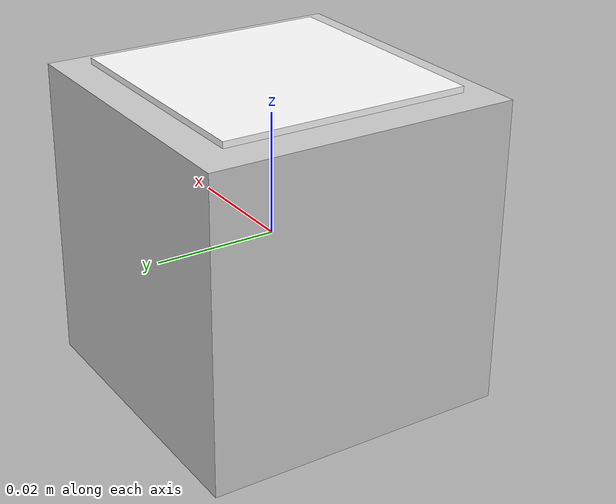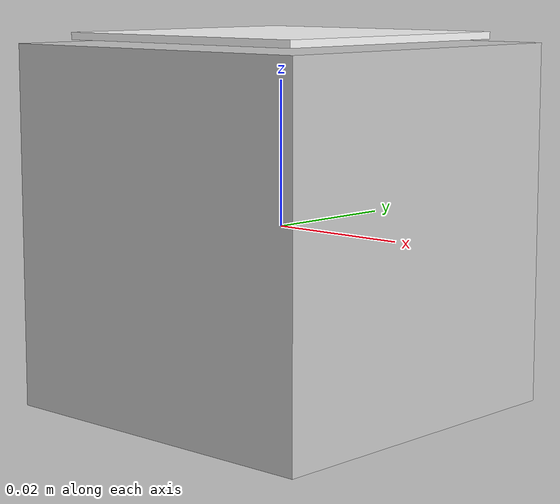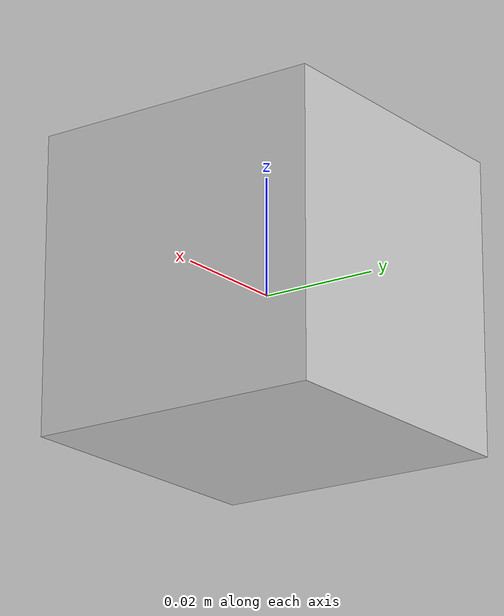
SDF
<?xml version="1.0" encoding="UTF-8"?>
<sdf version="1.7">
  <model name="arucotag">
    <static>false</static>

    <link name="base_link">
      <inertial>
        <mass>0.01</mass>
        <inertia>
          <ixx>0.00000416</ixx>
          <ixy>0</ixy>
          <ixz>0</ixz>
          <iyy>0.00000416</iyy>
          <iyz>0</iyz>
          <izz>0.00000416</izz>
        </inertia>
      </inertial>

     <collision name="box_collision">
        <geometry>
          <box>
            <size>0.05 0.05 0.05</size>
          </box>
        </geometry>
        <surface>
          <friction>
            <ode>
              <mu>1000.0</mu>
              <mu2>1000.0</mu2>
              <fdir1>0 0 0</fdir1>
              <slip1>0.0</slip1>
              <slip2>0.0</slip2>
            </ode>
          </friction>
          <contact>
            <ode>
              <kp>10000000.0</kp>
              <kd>1.0</kd>
              <minDepth>0.001</minDepth>
              <maxVel>0.0</maxVel>
            </ode>
          </contact>
        </surface>
      </collision>

      <visual name="cube_visual">
        <geometry>
          <box>
            <size>0.05 0.05 0.05</size>
          </box>
        </geometry>
        <material>
          <ambient>0.8 0.8 0.8 1</ambient>
          <diffuse>0.8 0.8 0.8 1</diffuse>
        </material>
      </visual>

      <visual name="aruco_visual">
        <pose>0 0 0.026 0 0 0</pose>
        <geometry>
          <box>
              <size>0.04 0.04 0.001</size> </box>
        </geometry>
        <material>
          <ambient>1 1 1 1</ambient>
          <diffuse>1 1 1 1</diffuse>
          <specular>0 0 0 1</specular>
          <pbr>
            <metal>
              <albedo_map>model://arucotag/aruco-201.png</albedo_map>
            </metal>
          </pbr>
        </material>
      </visual>

    </link>
  </model>
</sdf>
